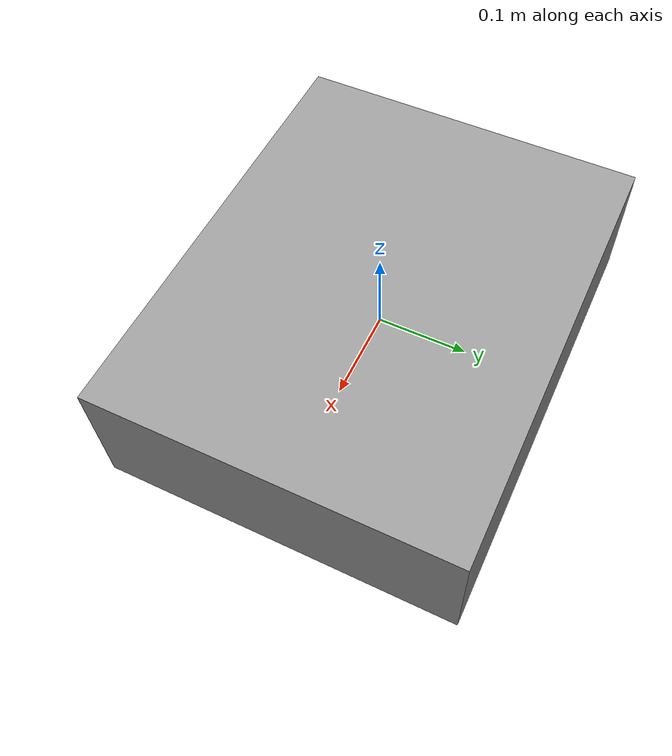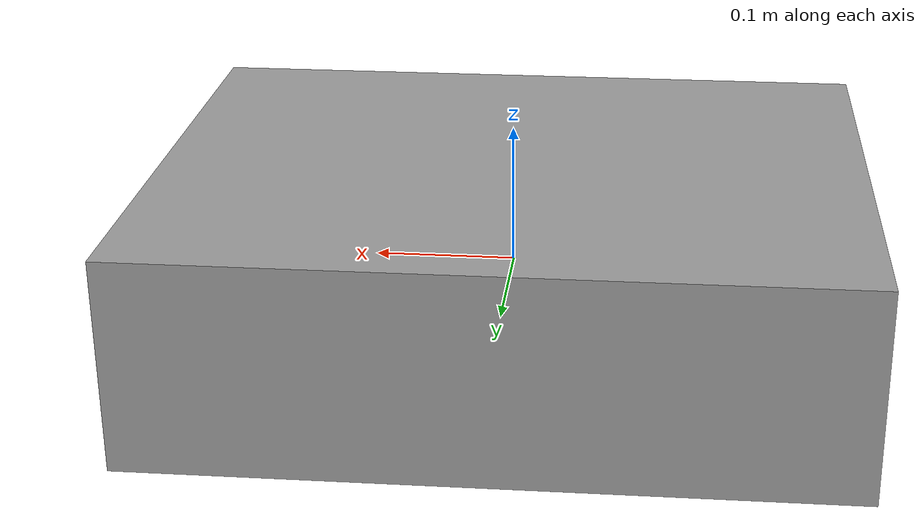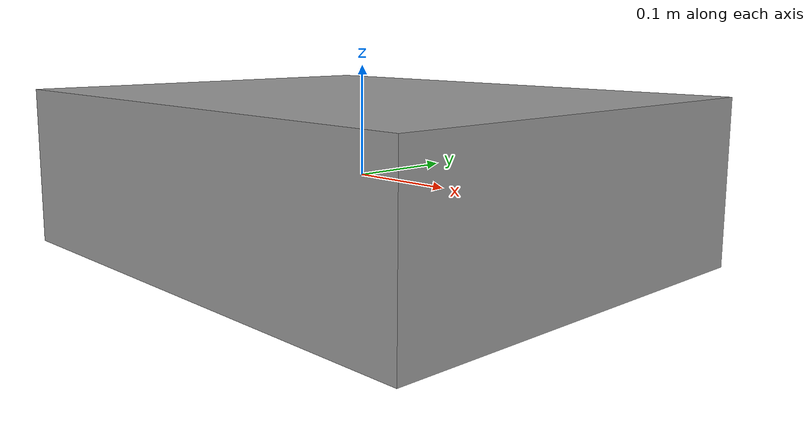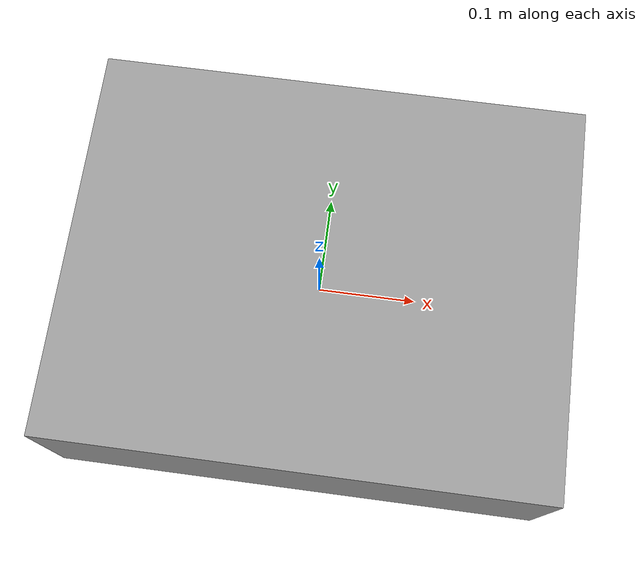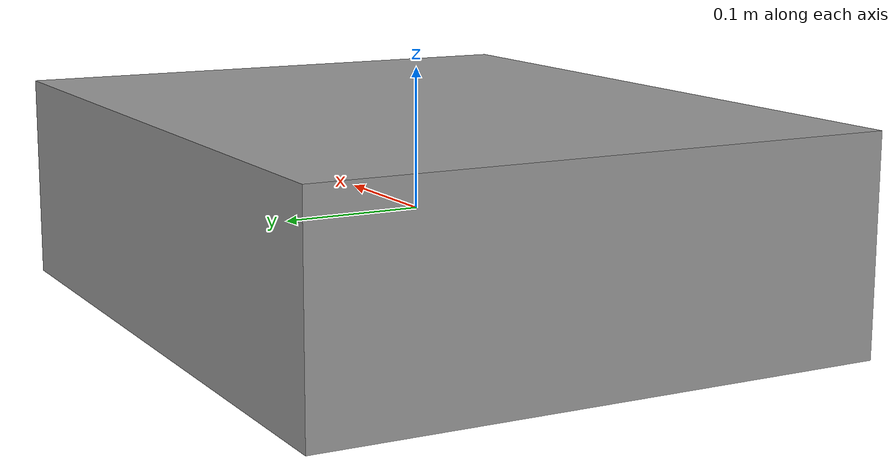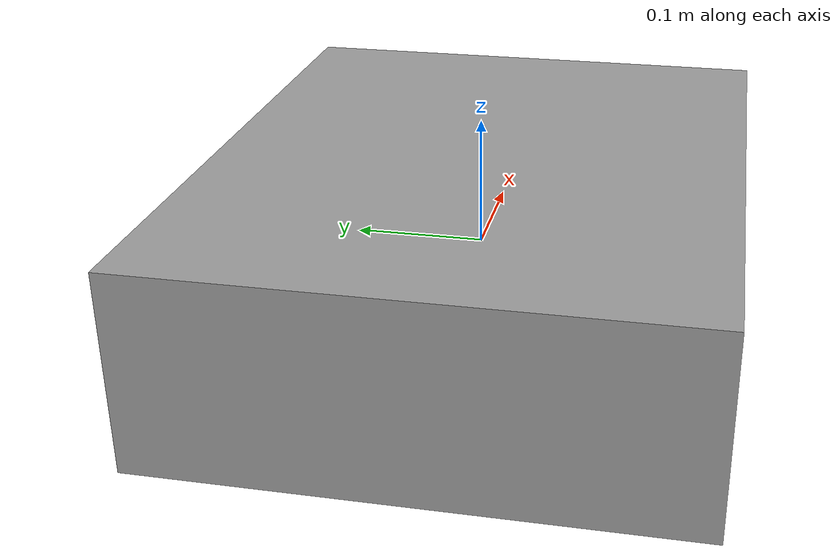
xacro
<?xml version="1.0"?>
<robot xmlns:xacro="http://www.ros.org/wiki/xacro" name="composite_robot">

  <!-- Parameters -->
  <xacro:property name="wheel_radius" value="0.08"/>
  <xacro:property name="base_length" value="0.5"/>
  <xacro:property name="base_width" value="0.4"/>

  <!-- Base link -->
  <link name="base_link">
    <visual>
      <geometry>
        <box size="${base_length} ${base_width} 0.15"/>
      </geometry>
      <material name="grey"/>
    </visual>
    <inertial>
      <mass value="20.0"/>
      <inertia ixx="1.0" iyy="1.0" izz="1.0"/>
    </inertial>
  </link>

  <!-- Arm base attached to mobile base -->
  <link name="arm_base"/>
  <joint name="base_to_arm" type="fixed">
    <parent link="base_link"/>
    <child link="arm_base"/>
    <origin xyz="0.0 0.0 0.15" rpy="0 0 0"/>
  </joint>

  <!-- Simple 6-DOF manipulator (minimal links for simulation alignment) -->
  <link name="link_1"/>
  <joint name="joint_1" type="revolute">
    <parent link="arm_base"/>
    <child link="link_1"/>
    <origin xyz="0 0 0.1" rpy="0 0 0"/>
    <axis xyz="0 0 1"/>
    <limit effort="50" velocity="1.0" lower="-3.14" upper="3.14"/>
  </joint>

  <link name="link_2"/>
  <joint name="joint_2" type="revolute">
    <parent link="link_1"/>
    <child link="link_2"/>
    <origin xyz="0 0 0.2" rpy="0 0 0"/>
    <axis xyz="0 1 0"/>
    <limit effort="50" velocity="1.0" lower="-3.14" upper="3.14"/>
  </joint>

  <link name="link_3"/>
  <joint name="joint_3" type="revolute">
    <parent link="link_2"/>
    <child link="link_3"/>
    <origin xyz="0 0 0.2" rpy="0 0 0"/>
    <axis xyz="0 1 0"/>
    <limit effort="30" velocity="1.0" lower="-3.14" upper="3.14"/>
  </joint>

  <link name="link_4"/>
  <joint name="joint_4" type="revolute">
    <parent link="link_3"/>
    <child link="link_4"/>
    <origin xyz="0 0 0.15" rpy="0 0 0"/>
    <axis xyz="0 0 1"/>
    <limit effort="20" velocity="1.0" lower="-3.14" upper="3.14"/>
  </joint>

  <link name="link_5"/>
  <joint name="joint_5" type="revolute">
    <parent link="link_4"/>
    <child link="link_5"/>
    <origin xyz="0 0 0.12" rpy="0 0 0"/>
    <axis xyz="0 1 0"/>
    <limit effort="10" velocity="1.0" lower="-3.14" upper="3.14"/>
  </joint>

  <link name="ee_link"/>
  <joint name="joint_6" type="revolute">
    <parent link="link_5"/>
    <child link="ee_link"/>
    <origin xyz="0 0 0.1" rpy="0 0 0"/>
    <axis xyz="0 0 1"/>
    <limit effort="10" velocity="1.0" lower="-3.14" upper="3.14"/>
  </joint>

  <!-- Camera mounted on arm_base (frame used by perception) -->
  <link name="camera_link"/>
  <joint name="armbase_to_camera" type="fixed">
    <parent link="arm_base"/>
    <child link="camera_link"/>
    <origin xyz="0.2 0 0.2" rpy="0 0 0"/>
  </joint>

</robot>
